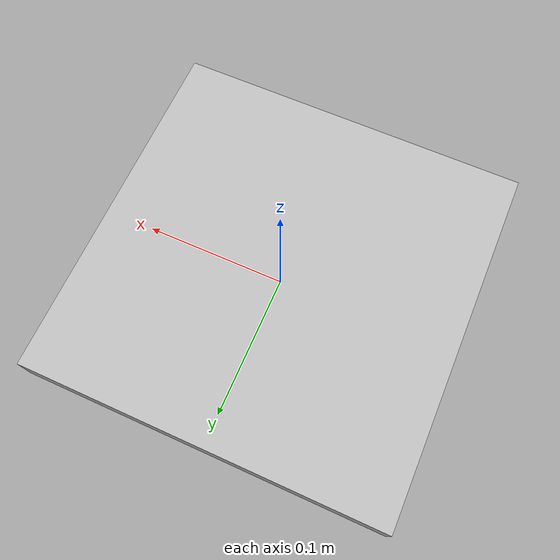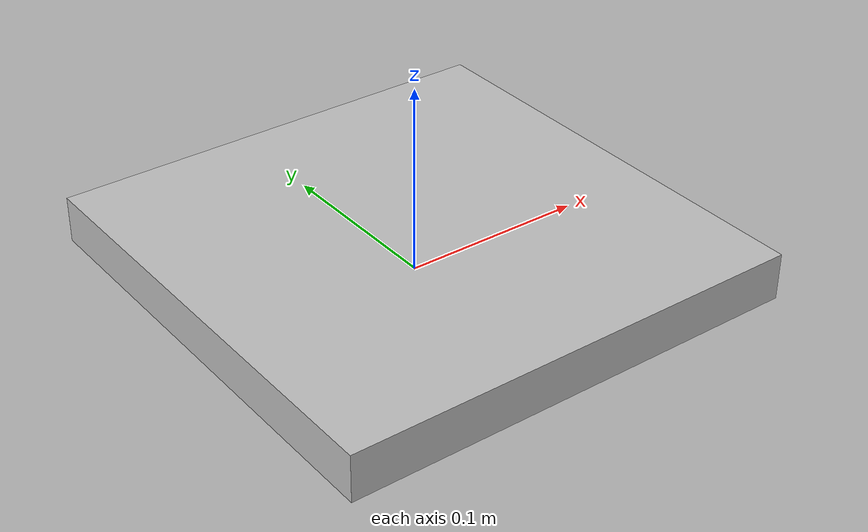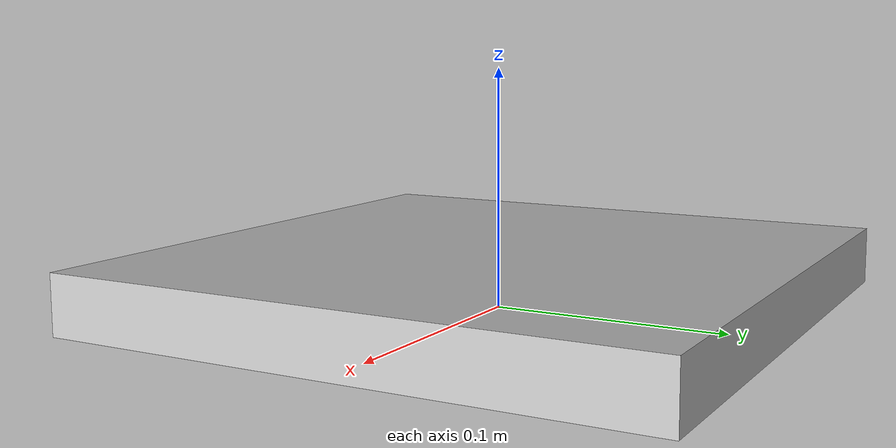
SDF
<?xml version="1.0" ?>
<sdf version="1.6">
  <model name="chess_board_small">
    <static>true</static>
    <link name="link">
      <collision name="collision">
        <geometry>
          <mesh>
            <scale>0.25 0.25 0.25</scale>
            <uri>model://chess_board_small/meshes/chess_board.stl</uri>
          </mesh>
           <surface>
            <friction>
              <ode>
                <mu>1.2</mu>
                <mu2>1.2</mu2>
              </ode>
            </friction>
          </surface>
        </geometry>
      </collision>
      <visual name="visual">
        <geometry>
          <mesh>
            <scale>0.25 0.25 0.25</scale>
            <uri>model://chess_board_small/meshes/chess_board.dae</uri>
          </mesh>
        </geometry>
      </visual>
    </link>
  </model>
</sdf>
